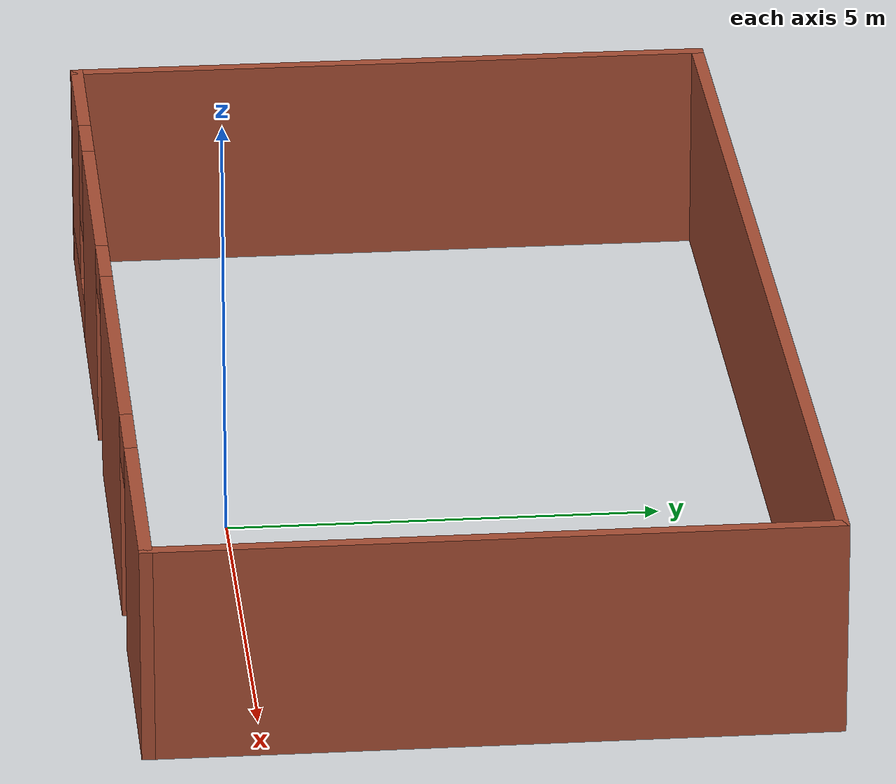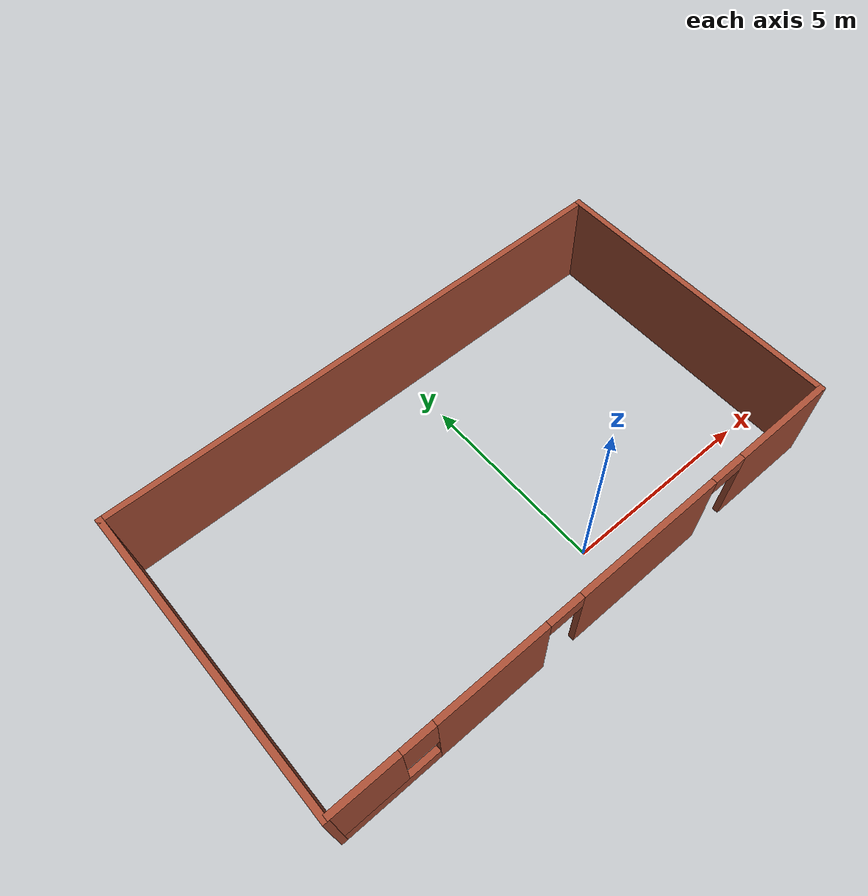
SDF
<?xml version='1.0'?>
<sdf version='1.6'>
  <model name='Egg'>
    <pose frame=''>-1.055 2.543 0 0 -0 0</pose>
    <link name='Wall_0'>
      <collision name='Wall_0_Collision'>
        <geometry>
          <box>
            <size>7.75 0.15 2.5</size>
          </box>
        </geometry>
        <pose frame=''>0 0 1.25 0 -0 0</pose>
      </collision>
      <visual name='Wall_0_Visual'>
        <pose frame=''>0 0 1.25 0 -0 0</pose>
        <geometry>
          <box>
            <size>7.75 0.15 2.5</size>
          </box>
        </geometry>
        <material>
          <script>
            <uri>file://media/materials/scripts/gazebo.material</uri>
            <name>Gazebo/Bricks</name>
          </script>
          <ambient>1 0.764706 0.305882 1</ambient>
        </material>
        <meta>
          <layer>0</layer>
        </meta>
      </visual>
      <pose frame=''>-6.8 0 0 0 -0 1.5708</pose>
    </link>
    <link name='Wall_1'>
      <collision name='Wall_1_Collision'>
        <geometry>
          <box>
            <size>13.75 0.15 2.5</size>
          </box>
        </geometry>
        <pose frame=''>0 0 1.25 0 -0 0</pose>
      </collision>
      <visual name='Wall_1_Visual'>
        <pose frame=''>0 0 1.25 0 -0 0</pose>
        <geometry>
          <box>
            <size>13.75 0.15 2.5</size>
          </box>
        </geometry>
        <material>
          <script>
            <uri>file://media/materials/scripts/gazebo.material</uri>
            <name>Gazebo/Bricks</name>
          </script>
          <ambient>1 0.764706 0.305882 1</ambient>
        </material>
        <meta>
          <layer>0</layer>
        </meta>
      </visual>
      <pose frame=''>0 3.8 0 0 -0 0</pose>
    </link>
    <link name='Wall_2'>
      <collision name='Wall_2_Collision'>
        <geometry>
          <box>
            <size>7.75 0.15 2.5</size>
          </box>
        </geometry>
        <pose frame=''>0 0 1.25 0 -0 0</pose>
      </collision>
      <visual name='Wall_2_Visual'>
        <pose frame=''>0 0 1.25 0 -0 0</pose>
        <geometry>
          <box>
            <size>7.75 0.15 2.5</size>
          </box>
        </geometry>
        <material>
          <script>
            <uri>file://media/materials/scripts/gazebo.material</uri>
            <name>Gazebo/Bricks</name>
          </script>
          <ambient>1 0.764706 0.305882 1</ambient>
        </material>
        <meta>
          <layer>0</layer>
        </meta>
      </visual>
      <pose frame=''>6.8 0 0 0 -0 -1.5708</pose>
    </link>
    <link name='Wall_3'>
      <pose frame=''>0 -3.8 0 0 -0 3.14159</pose>
      <visual name='Wall_3_Visual_0'>
        <pose frame=''>-5.51315 0 1.25 0 -0 0</pose>
        <geometry>
          <box>
            <size>2.7237 0.15 2.5</size>
          </box>
        </geometry>
        <material>
          <script>
            <uri>file://media/materials/scripts/gazebo.material</uri>
            <name>Gazebo/Bricks</name>
          </script>
          <ambient>1 0.764706 0.305882 1</ambient>
        </material>
        <meta>
          <layer>0</layer>
        </meta>
      </visual>
      <collision name='Wall_3_Collision_0'>
        <geometry>
          <box>
            <size>2.7237 0.15 2.5</size>
          </box>
        </geometry>
        <pose frame=''>-5.51315 0 1.25 0 -0 0</pose>
      </collision>
      <visual name='Wall_3_Visual_1'>
        <pose frame=''>-1.33041 0 1.25 0 -0 0</pose>
        <geometry>
          <box>
            <size>3.84178 0.15 2.5</size>
          </box>
        </geometry>
        <material>
          <script>
            <uri>file://media/materials/scripts/gazebo.material</uri>
            <name>Gazebo/Bricks</name>
          </script>
          <ambient>1 0.764706 0.305882 1</ambient>
        </material>
        <meta>
          <layer>0</layer>
        </meta>
      </visual>
      <collision name='Wall_3_Collision_1'>
        <geometry>
          <box>
            <size>3.84178 0.15 2.5</size>
          </box>
        </geometry>
        <pose frame=''>-1.33041 0 1.25 0 -0 0</pose>
      </collision>
      <visual name='Wall_3_Visual_2'>
        <pose frame=''>2.90436 0 1.25 0 -0 0</pose>
        <geometry>
          <box>
            <size>2.82777 0.15 2.5</size>
          </box>
        </geometry>
        <material>
          <script>
            <uri>file://media/materials/scripts/gazebo.material</uri>
            <name>Gazebo/Bricks</name>
          </script>
          <ambient>1 0.764706 0.305882 1</ambient>
        </material>
        <meta>
          <layer>0</layer>
        </meta>
      </visual>
      <collision name='Wall_3_Collision_2'>
        <geometry>
          <box>
            <size>2.82777 0.15 2.5</size>
          </box>
        </geometry>
        <pose frame=''>2.90436 0 1.25 0 -0 0</pose>
      </collision>
      <visual name='Wall_3_Visual_3'>
        <pose frame=''>5.59662 0 0.25 0 -0 0</pose>
        <geometry>
          <box>
            <size>2.55675 0.15 0.5</size>
          </box>
        </geometry>
        <material>
          <script>
            <uri>file://media/materials/scripts/gazebo.material</uri>
            <name>Gazebo/Bricks</name>
          </script>
          <ambient>1 0.764706 0.305882 1</ambient>
        </material>
        <meta>
          <layer>0</layer>
        </meta>
      </visual>
      <collision name='Wall_3_Collision_3'>
        <geometry>
          <box>
            <size>2.55675 0.15 0.5</size>
          </box>
        </geometry>
        <pose frame=''>5.59662 0 0.25 0 -0 0</pose>
      </collision>
      <visual name='Wall_3_Visual_4'>
        <pose frame=''>5.99662 0 1.5 0 -0 0</pose>
        <geometry>
          <box>
            <size>1.75676 0.15 2</size>
          </box>
        </geometry>
        <material>
          <script>
            <uri>file://media/materials/scripts/gazebo.material</uri>
            <name>Gazebo/Bricks</name>
          </script>
          <ambient>1 0.764706 0.305882 1</ambient>
        </material>
        <meta>
          <layer>0</layer>
        </meta>
      </visual>
      <collision name='Wall_3_Collision_4'>
        <geometry>
          <box>
            <size>1.75676 0.15 2</size>
          </box>
        </geometry>
        <pose frame=''>5.99662 0 1.5 0 -0 0</pose>
      </collision>
      <visual name='Wall_3_Visual_5'>
        <pose frame=''>4.71824 0 1.9 0 -0 0</pose>
        <geometry>
          <box>
            <size>0.8 0.15 1.2</size>
          </box>
        </geometry>
        <material>
          <script>
            <uri>file://media/materials/scripts/gazebo.material</uri>
            <name>Gazebo/Bricks</name>
          </script>
          <ambient>1 0.764706 0.305882 1</ambient>
        </material>
        <meta>
          <layer>0</layer>
        </meta>
      </visual>
      <collision name='Wall_3_Collision_5'>
        <geometry>
          <box>
            <size>0.8 0.15 1.2</size>
          </box>
        </geometry>
        <pose frame=''>4.71824 0 1.9 0 -0 0</pose>
      </collision>
      <visual name='Wall_3_Visual_6'>
        <pose frame=''>-3.7013 0 2.25 0 -0 0</pose>
        <geometry>
          <box>
            <size>0.9 0.15 0.5</size>
          </box>
        </geometry>
        <material>
          <script>
            <uri>file://media/materials/scripts/gazebo.material</uri>
            <name>Gazebo/Bricks</name>
          </script>
          <ambient>1 0.764706 0.305882 1</ambient>
        </material>
        <meta>
          <layer>0</layer>
        </meta>
      </visual>
      <collision name='Wall_3_Collision_6'>
        <geometry>
          <box>
            <size>0.9 0.15 0.5</size>
          </box>
        </geometry>
        <pose frame=''>-3.7013 0 2.25 0 -0 0</pose>
      </collision>
      <visual name='Wall_3_Visual_7'>
        <pose frame=''>1.04048 0 2.25 0 -0 0</pose>
        <geometry>
          <box>
            <size>0.9 0.15 0.5</size>
          </box>
        </geometry>
        <material>
          <script>
            <uri>file://media/materials/scripts/gazebo.material</uri>
            <name>Gazebo/Bricks</name>
          </script>
          <ambient>1 0.764706 0.305882 1</ambient>
        </material>
        <meta>
          <layer>0</layer>
        </meta>
      </visual>
      <collision name='Wall_3_Collision_7'>
        <geometry>
          <box>
            <size>0.9 0.15 0.5</size>
          </box>
        </geometry>
        <pose frame=''>1.04048 0 2.25 0 -0 0</pose>
      </collision>
    </link>
    <static>1</static>
  </model>
</sdf>
